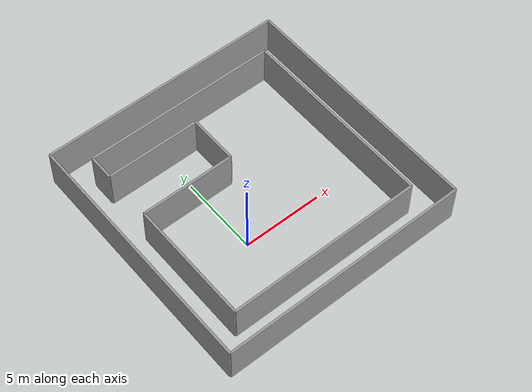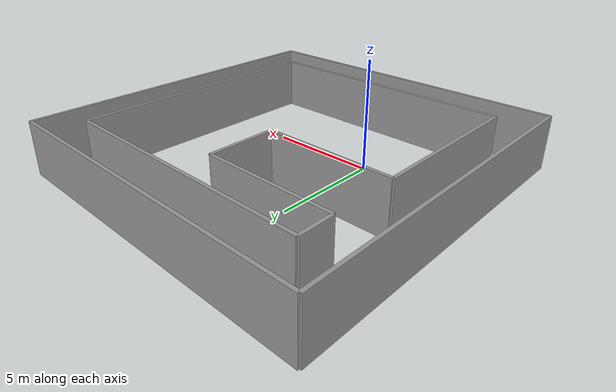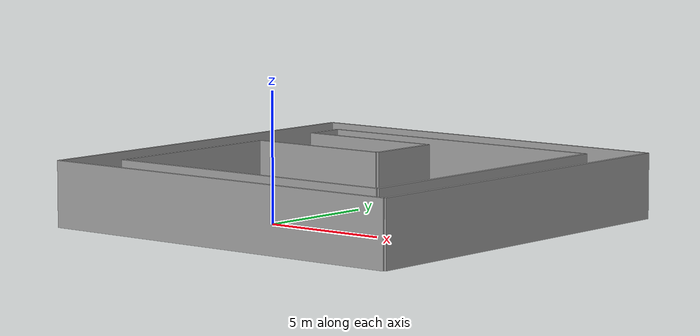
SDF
<?xml version='1.0'?>
<sdf version='1.6'>
  <model name='5th_floor'>
    <pose frame=''>2.12813 2.27832 0 0 -0 0</pose>
    <link name='Wall_10'>
      <collision name='Wall_10_Collision'>
        <geometry>
          <box>
            <size>12.16 0.15 2.5</size>
          </box>
        </geometry>
        <pose frame=''>0 0 1.25 0 -0 0</pose>
      </collision>
      <visual name='Wall_10_Visual'>
        <pose frame=''>0 0 1.25 0 -0 0</pose>
        <geometry>
          <box>
            <size>12.16 0.15 2.5</size>
          </box>
        </geometry>
        <material>
          <script>
            <uri>file://media/materials/scripts/gazebo.material</uri>
            <name>Gazebo/Grey</name>
          </script>
          <ambient>1 1 1 1</ambient>
        </material>
      </visual>
      <pose frame=''>0 -6.17 0 0 0 0</pose>
    </link>
    <link name='Wall_11'>
      <collision name='Wall_11_Collision'>
        <geometry>
          <box>
            <size>12.34 0.15 2.5</size>
          </box>
        </geometry>
        <pose frame=''>0 0 1.25 0 -0 0</pose>
      </collision>
      <visual name='Wall_11_Visual'>
        <pose frame=''>0 0 1.25 0 -0 0</pose>
        <geometry>
          <box>
            <size>12.34 0.15 2.5</size>
          </box>
        </geometry>
        <material>
          <script>
            <uri>file://media/materials/scripts/gazebo.material</uri>
            <name>Gazebo/Grey</name>
          </script>
          <ambient>1 1 1 1</ambient>
        </material>
      </visual>
      <pose frame=''>6.08 0 0 0 0 1.57079632679</pose>
    </link>
    <link name='Wall_12'>
      <collision name='Wall_12_Collision'>
        <geometry>
          <box>
            <size>12.16 0.15 2.5</size>
          </box>
        </geometry>
        <pose frame=''>0 0 1.25 0 -0 0</pose>
      </collision>
      <visual name='Wall_12_Visual'>
        <pose frame=''>0 0 1.25 0 -0 0</pose>
        <geometry>
          <box>
            <size>12.16 0.15 2.5</size>
          </box>
        </geometry>
        <material>
          <script>
            <uri>file://media/materials/scripts/gazebo.material</uri>
            <name>Gazebo/Grey</name>
          </script>
          <ambient>1 1 1 1</ambient>
        </material>
      </visual>
      <pose frame=''>0 6.17 0 0 0 -3.14159265359</pose>
    </link>
    <link name='Wall_16'>
      <collision name='Wall_16_Collision'>
        <geometry>
          <box>
            <size>5.86 0.15 2.5</size>
          </box>
        </geometry>
        <pose frame=''>0 0 1.25 0 -0 0</pose>
      </collision>
      <visual name='Wall_16_Visual'>
        <pose frame=''>0 0 1.25 0 -0 0</pose>
        <geometry>
          <box>
            <size>5.86 0.15 2.5</size>
          </box>
        </geometry>
        <material>
          <script>
            <uri>file://media/materials/scripts/gazebo.material</uri>
            <name>Gazebo/Grey</name>
          </script>
          <ambient>1 1 1 1</ambient>
        </material>
      </visual>
      <pose frame=''>-3.15 1.5 0 0 0 -3.14159265359</pose>
    </link>
    <link name='Wall_18'>
      <collision name='Wall_18_Collision'>
        <geometry>
          <box>
            <size>5.86 0.15 2.5</size>
          </box>
        </geometry>
        <pose frame=''>0 0 1.25 0 -0 0</pose>
      </collision>
      <visual name='Wall_18_Visual'>
        <pose frame=''>0 0 1.25 0 -0 0</pose>
        <geometry>
          <box>
            <size>5.86 0.15 2.5</size>
          </box>
        </geometry>
        <material>
          <script>
            <uri>file://media/materials/scripts/gazebo.material</uri>
            <name>Gazebo/Grey</name>
          </script>
          <ambient>1 1 1 1</ambient>
        </material>
      </visual>
      <pose frame=''>-3.15 4.6 0 0 0 0</pose>
    </link>
    <link name='Wall_19'>
      <collision name='Wall_19_Collision'>
        <geometry>
          <box>
            <size>3.1 0.15 2.5</size>
          </box>
        </geometry>
        <pose frame=''>0 0 1.25 0 -0 0</pose>
      </collision>
      <visual name='Wall_19_Visual'>
        <pose frame=''>0 0 1.25 0 -0 0</pose>
        <geometry>
          <box>
            <size>3.1 0.15 2.5</size>
          </box>
        </geometry>
        <material>
          <script>
            <uri>file://media/materials/scripts/gazebo.material</uri>
            <name>Gazebo/Grey</name>
          </script>
          <ambient>1 1 1 1</ambient>
        </material>
      </visual>
      <pose frame=''>-0.2 3.05 0 0 0 -1.5708</pose>
    </link>
    <link name='Wall_21'>
      <collision name='Wall_21_Collision'>
        <geometry>
          <box>
            <size>1.57 0.15 2.5</size>
          </box>
        </geometry>
        <pose frame=''>0 0 1.25 0 -0 0</pose>
      </collision>
      <visual name='Wall_21_Visual'>
        <pose frame=''>0 0 1.25 0 -0 0</pose>
        <geometry>
          <box>
            <size>1.57 0.15 2.5</size>
          </box>
        </geometry>
        <material>
          <script>
            <uri>file://media/materials/scripts/gazebo.material</uri>
            <name>Gazebo/Grey</name>
          </script>
          <ambient>1 1 1 1</ambient>
        </material>
      </visual>
      <pose frame=''>-6.08 5.385 0 0 0 1.57079632679</pose>
    </link>
    <link name='Wall_4'>
      <collision name='Wall_4_Collision'>
        <geometry>
          <box>
            <size>15.68 0.15 2.5</size>
          </box>
        </geometry>
        <pose frame=''>0 0 1.25 0 -0 0</pose>
      </collision>
      <visual name='Wall_4_Visual'>
        <pose frame=''>0 0 1.25 0 -0 0</pose>
        <geometry>
          <box>
            <size>15.68 0.15 2.5</size>
          </box>
        </geometry>
        <material>
          <script>
            <uri>file://media/materials/scripts/gazebo.material</uri>
            <name>Gazebo/Grey</name>
          </script>
          <ambient>1 1 1 1</ambient>
        </material>
      </visual>
      <pose frame=''>-7.75 0 0 0 0 -1.57079632679</pose>
    </link>
    <link name='Wall_5'>
      <collision name='Wall_5_Collision'>
        <geometry>
          <box>
            <size>15.50 0.15 2.5</size>
          </box>
        </geometry>
        <pose frame=''>0 0 1.25 0 -0 0</pose>
      </collision>
      <visual name='Wall_5_Visual'>
        <pose frame=''>0 0 1.25 0 -0 0</pose>
        <geometry>
          <box>
            <size>15.50 0.15 2.5</size>
          </box>
        </geometry>
        <material>
          <script>
            <uri>file://media/materials/scripts/gazebo.material</uri>
            <name>Gazebo/Grey</name>
          </script>
          <ambient>1 1 1 1</ambient>
        </material>
      </visual>
      <pose frame=''>0 -7.84 0 0 0 0</pose>
    </link>
    <link name='Wall_6'>
      <collision name='Wall_6_Collision'>
        <geometry>
          <box>
            <size>15.68 0.15 2.5</size>
          </box>
        </geometry>
        <pose frame=''>0 0 1.25 0 -0 0</pose>
      </collision>
      <visual name='Wall_6_Visual'>
        <pose frame=''>0 0 1.25 0 -0 0</pose>
        <geometry>
          <box>
            <size>15.68 0.15 2.5</size>
          </box>
        </geometry>
        <material>
          <script>
            <uri>file://media/materials/scripts/gazebo.material</uri>
            <name>Gazebo/Grey</name>
          </script>
          <ambient>1 1 1 1</ambient>
        </material>
      </visual>
      <pose frame=''>7.75 0 0 0 0 1.57079632679</pose>
    </link>
    <link name='Wall_7'>
      <collision name='Wall_7_Collision'>
        <geometry>
          <box>
            <size>15.5 0.15 2.5</size>
          </box>
        </geometry>
        <pose frame=''>0 0 1.25 0 -0 0</pose>
      </collision>
      <visual name='Wall_7_Visual'>
        <pose frame=''>0 0 1.25 0 -0 0</pose>
        <geometry>
          <box>
            <size>15.5 0.15 2.5</size>
          </box>
        </geometry>
        <material>
          <script>
            <uri>file://media/materials/scripts/gazebo.material</uri>
            <name>Gazebo/Grey</name>
          </script>
          <ambient>1 1 1 1</ambient>
        </material>
      </visual>
      <pose frame=''>0 7.84 0 0 0 3.14159265359</pose>
    </link>
    <link name='Wall_9'>
      <collision name='Wall_9_Collision'>
        <geometry>
          <box>
            <size>7.67 0.15 2.5</size>
          </box>
        </geometry>
        <pose frame=''>0 0 1.25 0 -0 0</pose>
      </collision>
      <visual name='Wall_9_Visual'>
        <pose frame=''>0 0 1.25 0 -0 0</pose>
        <geometry>
          <box>
            <size>7.67 0.15 2.5</size>
          </box>
        </geometry>
        <material>
          <script>
            <uri>file://media/materials/scripts/gazebo.material</uri>
            <name>Gazebo/Grey</name>
          </script>
          <ambient>1 1 1 1</ambient>
        </material>
      </visual>
      <pose frame=''>-6.08 -2.335 0 0 0 -1.57079632679</pose>
    </link>
    <static>1</static>
  </model>
</sdf>
